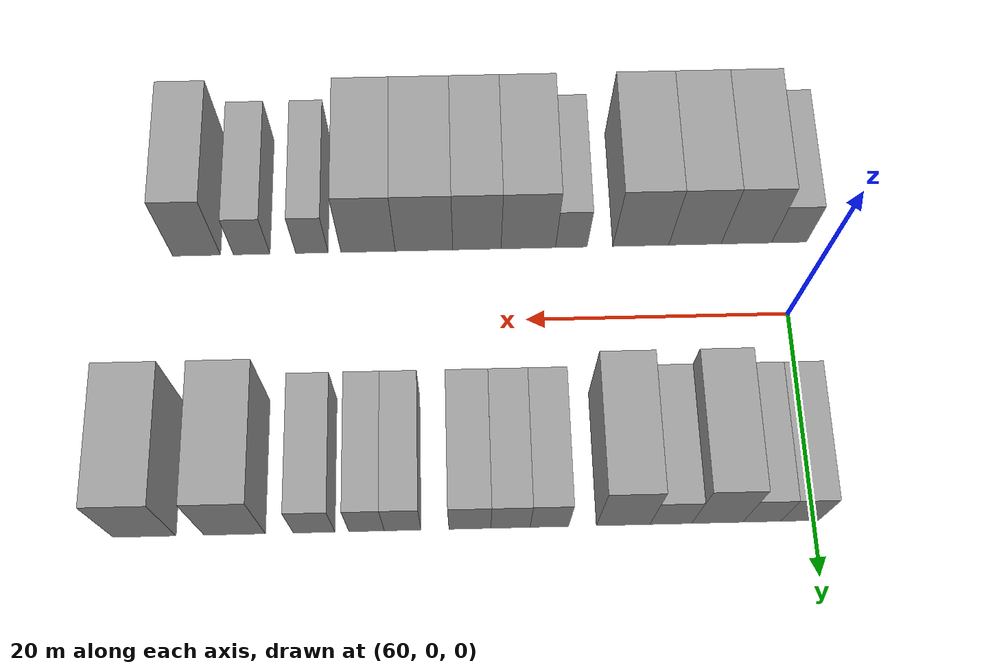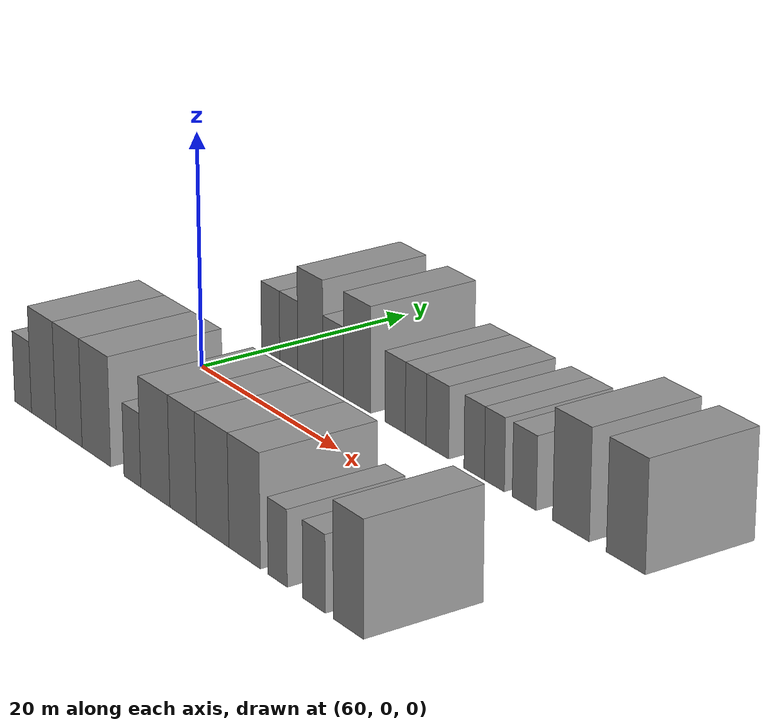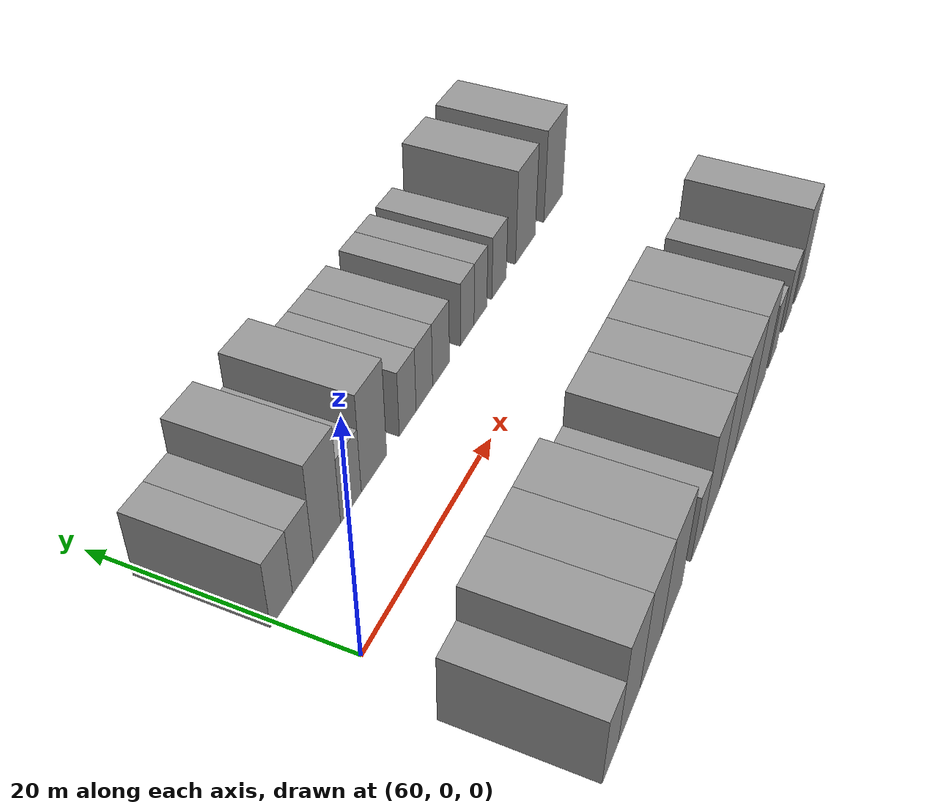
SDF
<sdf version="1.6">
 <world name="default">
  <model name="building_14">
   <static>1</static>
   <pose>60.9623 11.0000 0 0.000000 0.000000 1.570796</pose>
   <link name="link">
    <pose>0 0 3.00 0 0 0</pose>
    <collision name="collision"><geometry><box><size>10.0000 2.7682 6.0000</size></box></geometry></collision>
    <visual name="visual">
     <cast_shadows>0</cast_shadows>
     <geometry><box><size>10.0000 2.7682 6.0000</size></box></geometry>
     <material>
      <script>
       <uri>model://grey_wall/materials/scripts</uri>
       <uri>model://grey_wall/materials/textures</uri>
       <name>vrc/grey_wall</name>
      </script>
     </material>
    </visual>
   </link>
  </model>
  <model name="building_15">
   <static>1</static>
   <pose>63.6974 11.0000 0 0.000000 0.000000 1.570796</pose>
   <link name="link">
    <pose>0 0 3.00 0 0 0</pose>
    <collision name="collision"><geometry><box><size>10.0000 2.7020 6.0000</size></box></geometry></collision>
    <visual name="visual">
     <cast_shadows>0</cast_shadows>
     <geometry><box><size>10.0000 2.7020 6.0000</size></box></geometry>
     <material>
      <script>
       <uri>model://grey_wall/materials/scripts</uri>
       <uri>model://grey_wall/materials/textures</uri>
       <name>vrc/grey_wall</name>
      </script>
     </material>
    </visual>
   </link>
  </model>
  <model name="building_16">
   <static>1</static>
   <pose>66.8935 11.0000 0 0.000000 0.000000 1.570796</pose>
   <link name="link">
    <pose>0 0 4.50 0 0 0</pose>
    <collision name="collision"><geometry><box><size>10.0000 3.6904 9.0000</size></box></geometry></collision>
    <visual name="visual">
     <cast_shadows>0</cast_shadows>
     <geometry><box><size>10.0000 3.6904 9.0000</size></box></geometry>
     <material>
      <script>
       <uri>model://grey_wall/materials/scripts</uri>
       <uri>model://grey_wall/materials/textures</uri>
       <name>vrc/grey_wall</name>
      </script>
     </material>
    </visual>
   </link>
  </model>
  <model name="building_17">
   <static>1</static>
   <pose>70.2351 11.0000 0 0.000000 0.000000 1.570796</pose>
   <link name="link">
    <pose>0 0 3.00 0 0 0</pose>
    <collision name="collision"><geometry><box><size>10.0000 2.9928 6.0000</size></box></geometry></collision>
    <visual name="visual">
     <cast_shadows>0</cast_shadows>
     <geometry><box><size>10.0000 2.9928 6.0000</size></box></geometry>
     <material>
      <script>
       <uri>model://grey_wall/materials/scripts</uri>
       <uri>model://grey_wall/materials/textures</uri>
       <name>vrc/grey_wall</name>
      </script>
     </material>
    </visual>
   </link>
  </model>
  <model name="building_18">
   <static>1</static>
   <pose>73.6525 11.0000 0 0.000000 0.000000 1.570796</pose>
   <link name="link">
    <pose>0 0 4.50 0 0 0</pose>
    <collision name="collision"><geometry><box><size>10.0000 3.8420 9.0000</size></box></geometry></collision>
    <visual name="visual">
     <cast_shadows>0</cast_shadows>
     <geometry><box><size>10.0000 3.8420 9.0000</size></box></geometry>
     <material>
      <script>
       <uri>model://grey_wall/materials/scripts</uri>
       <uri>model://grey_wall/materials/textures</uri>
       <name>vrc/grey_wall</name>
      </script>
     </material>
    </visual>
   </link>
  </model>
  <model name="building_19">
   <static>1</static>
   <pose>78.9546 11.0000 0 0.000000 0.000000 1.570796</pose>
   <link name="link">
    <pose>0 0 3.00 0 0 0</pose>
    <collision name="collision"><geometry><box><size>10.0000 2.7621 6.0000</size></box></geometry></collision>
    <visual name="visual">
     <cast_shadows>0</cast_shadows>
     <geometry><box><size>10.0000 2.7621 6.0000</size></box></geometry>
     <material>
      <script>
       <uri>model://grey_wall/materials/scripts</uri>
       <uri>model://grey_wall/materials/textures</uri>
       <name>vrc/grey_wall</name>
      </script>
     </material>
    </visual>
   </link>
  </model>
  <model name="building_20">
   <static>1</static>
   <pose>81.7388 11.0000 0 0.000000 0.000000 1.570796</pose>
   <link name="link">
    <pose>0 0 3.00 0 0 0</pose>
    <collision name="collision"><geometry><box><size>10.0000 2.8063 6.0000</size></box></geometry></collision>
    <visual name="visual">
     <cast_shadows>0</cast_shadows>
     <geometry><box><size>10.0000 2.8063 6.0000</size></box></geometry>
     <material>
      <script>
       <uri>model://grey_wall/materials/scripts</uri>
       <uri>model://grey_wall/materials/textures</uri>
       <name>vrc/grey_wall</name>
      </script>
     </material>
    </visual>
   </link>
  </model>
  <model name="building_21">
   <static>1</static>
   <pose>84.6400 11.0000 0 0.000000 0.000000 1.570796</pose>
   <link name="link">
    <pose>0 0 3.00 0 0 0</pose>
    <collision name="collision"><geometry><box><size>10.0000 2.9960 6.0000</size></box></geometry></collision>
    <visual name="visual">
     <cast_shadows>0</cast_shadows>
     <geometry><box><size>10.0000 2.9960 6.0000</size></box></geometry>
     <material>
      <script>
       <uri>model://grey_wall/materials/scripts</uri>
       <uri>model://grey_wall/materials/textures</uri>
       <name>vrc/grey_wall</name>
      </script>
     </material>
    </visual>
   </link>
  </model>
  <model name="building_22">
   <static>1</static>
   <pose>89.4517 11.0000 0 0.000000 0.000000 1.570796</pose>
   <link name="link">
    <pose>0 0 3.00 0 0 0</pose>
    <collision name="collision"><geometry><box><size>10.0000 2.6273 6.0000</size></box></geometry></collision>
    <visual name="visual">
     <cast_shadows>0</cast_shadows>
     <geometry><box><size>10.0000 2.6273 6.0000</size></box></geometry>
     <material>
      <script>
       <uri>model://grey_wall/materials/scripts</uri>
       <uri>model://grey_wall/materials/textures</uri>
       <name>vrc/grey_wall</name>
      </script>
     </material>
    </visual>
   </link>
  </model>
  <model name="building_23">
   <static>1</static>
   <pose>92.0279 11.0000 0 0.000000 0.000000 1.570796</pose>
   <link name="link">
    <pose>0 0 3.00 0 0 0</pose>
    <collision name="collision"><geometry><box><size>10.0000 2.5250 6.0000</size></box></geometry></collision>
    <visual name="visual">
     <cast_shadows>0</cast_shadows>
     <geometry><box><size>10.0000 2.5250 6.0000</size></box></geometry>
     <material>
      <script>
       <uri>model://grey_wall/materials/scripts</uri>
       <uri>model://grey_wall/materials/textures</uri>
       <name>vrc/grey_wall</name>
      </script>
     </material>
    </visual>
   </link>
  </model>
  <model name="building_24">
   <static>1</static>
   <pose>95.7770 11.0000 0 0.000000 0.000000 1.570796</pose>
   <link name="link">
    <pose>0 0 3.00 0 0 0</pose>
    <collision name="collision"><geometry><box><size>10.0000 2.9732 6.0000</size></box></geometry></collision>
    <visual name="visual">
     <cast_shadows>0</cast_shadows>
     <geometry><box><size>10.0000 2.9732 6.0000</size></box></geometry>
     <material>
      <script>
       <uri>model://grey_wall/materials/scripts</uri>
       <uri>model://grey_wall/materials/textures</uri>
       <name>vrc/grey_wall</name>
      </script>
     </material>
    </visual>
   </link>
  </model>
  <model name="building_25">
   <static>1</static>
   <pose>101.4536 11.0000 0 0.000000 0.000000 1.570796</pose>
   <link name="link">
    <pose>0 0 4.50 0 0 0</pose>
    <collision name="collision"><geometry><box><size>10.0000 4.3800 9.0000</size></box></geometry></collision>
    <visual name="visual">
     <cast_shadows>0</cast_shadows>
     <geometry><box><size>10.0000 4.3800 9.0000</size></box></geometry>
     <material>
      <script>
       <uri>model://grey_wall/materials/scripts</uri>
       <uri>model://grey_wall/materials/textures</uri>
       <name>vrc/grey_wall</name>
      </script>
     </material>
    </visual>
   </link>
  </model>
  <model name="building_26">
   <static>1</static>
   <pose>107.8832 11.0000 0 0.000000 0.000000 1.570796</pose>
   <link name="link">
    <pose>0 0 4.50 0 0 0</pose>
    <collision name="collision"><geometry><box><size>10.0000 4.4793 9.0000</size></box></geometry></collision>
    <visual name="visual">
     <cast_shadows>0</cast_shadows>
     <geometry><box><size>10.0000 4.4793 9.0000</size></box></geometry>
     <material>
      <script>
       <uri>model://grey_wall/materials/scripts</uri>
       <uri>model://grey_wall/materials/textures</uri>
       <name>vrc/grey_wall</name>
      </script>
     </material>
    </visual>
   </link>
  </model>
  <model name="building_62">
   <static>1</static>
   <pose>59.2356 -11.0000 0 0.000000 0.000000 1.570796</pose>
   <link name="link">
    <pose>0 0 3.00 0 0 0</pose>
    <collision name="collision"><geometry><box><size>10.0000 2.7404 6.0000</size></box></geometry></collision>
    <visual name="visual">
     <cast_shadows>0</cast_shadows>
     <geometry><box><size>10.0000 2.7404 6.0000</size></box></geometry>
     <material>
      <script>
       <uri>model://grey_wall/materials/scripts</uri>
       <uri>model://grey_wall/materials/textures</uri>
       <name>vrc/grey_wall</name>
      </script>
     </material>
    </visual>
   </link>
  </model>
  <model name="building_63">
   <static>1</static>
   <pose>62.5726 -11.0000 0 0.000000 0.000000 1.570796</pose>
   <link name="link">
    <pose>0 0 4.50 0 0 0</pose>
    <collision name="collision"><geometry><box><size>10.0000 3.9336 9.0000</size></box></geometry></collision>
    <visual name="visual">
     <cast_shadows>0</cast_shadows>
     <geometry><box><size>10.0000 3.9336 9.0000</size></box></geometry>
     <material>
      <script>
       <uri>model://grey_wall/materials/scripts</uri>
       <uri>model://grey_wall/materials/textures</uri>
       <name>vrc/grey_wall</name>
      </script>
     </material>
    </visual>
   </link>
  </model>
  <model name="building_64">
   <static>1</static>
   <pose>66.5847 -11.0000 0 0.000000 0.000000 1.570796</pose>
   <link name="link">
    <pose>0 0 4.50 0 0 0</pose>
    <collision name="collision"><geometry><box><size>10.0000 4.0906 9.0000</size></box></geometry></collision>
    <visual name="visual">
     <cast_shadows>0</cast_shadows>
     <geometry><box><size>10.0000 4.0906 9.0000</size></box></geometry>
     <material>
      <script>
       <uri>model://grey_wall/materials/scripts</uri>
       <uri>model://grey_wall/materials/textures</uri>
       <name>vrc/grey_wall</name>
      </script>
     </material>
    </visual>
   </link>
  </model>
  <model name="building_65">
   <static>1</static>
   <pose>70.8140 -11.0000 0 0.000000 0.000000 1.570796</pose>
   <link name="link">
    <pose>0 0 4.50 0 0 0</pose>
    <collision name="collision"><geometry><box><size>10.0000 4.3679 9.0000</size></box></geometry></collision>
    <visual name="visual">
     <cast_shadows>0</cast_shadows>
     <geometry><box><size>10.0000 4.3679 9.0000</size></box></geometry>
     <material>
      <script>
       <uri>model://grey_wall/materials/scripts</uri>
       <uri>model://grey_wall/materials/textures</uri>
       <name>vrc/grey_wall</name>
      </script>
     </material>
    </visual>
   </link>
  </model>
  <model name="building_66">
   <static>1</static>
   <pose>76.2325 -11.0000 0 0.000000 0.000000 1.570796</pose>
   <link name="link">
    <pose>0 0 3.00 0 0 0</pose>
    <collision name="collision"><geometry><box><size>10.0000 2.4692 6.0000</size></box></geometry></collision>
    <visual name="visual">
     <cast_shadows>0</cast_shadows>
     <geometry><box><size>10.0000 2.4692 6.0000</size></box></geometry>
     <material>
      <script>
       <uri>model://grey_wall/materials/scripts</uri>
       <uri>model://grey_wall/materials/textures</uri>
       <name>vrc/grey_wall</name>
      </script>
     </material>
    </visual>
   </link>
  </model>
  <model name="building_67">
   <static>1</static>
   <pose>79.5894 -11.0000 0 0.000000 0.000000 1.570796</pose>
   <link name="link">
    <pose>0 0 4.50 0 0 0</pose>
    <collision name="collision"><geometry><box><size>10.0000 4.2446 9.0000</size></box></geometry></collision>
    <visual name="visual">
     <cast_shadows>0</cast_shadows>
     <geometry><box><size>10.0000 4.2446 9.0000</size></box></geometry>
     <material>
      <script>
       <uri>model://grey_wall/materials/scripts</uri>
       <uri>model://grey_wall/materials/textures</uri>
       <name>vrc/grey_wall</name>
      </script>
     </material>
    </visual>
   </link>
  </model>
  <model name="building_68">
   <static>1</static>
   <pose>83.5843 -11.0000 0 0.000000 0.000000 1.570796</pose>
   <link name="link">
    <pose>0 0 4.50 0 0 0</pose>
    <collision name="collision"><geometry><box><size>10.0000 3.7452 9.0000</size></box></geometry></collision>
    <visual name="visual">
     <cast_shadows>0</cast_shadows>
     <geometry><box><size>10.0000 3.7452 9.0000</size></box></geometry>
     <material>
      <script>
       <uri>model://grey_wall/materials/scripts</uri>
       <uri>model://grey_wall/materials/textures</uri>
       <name>vrc/grey_wall</name>
      </script>
     </material>
    </visual>
   </link>
  </model>
  <model name="building_69">
   <static>1</static>
   <pose>87.6979 -11.0000 0 0.000000 0.000000 1.570796</pose>
   <link name="link">
    <pose>0 0 4.50 0 0 0</pose>
    <collision name="collision"><geometry><box><size>10.0000 4.4820 9.0000</size></box></geometry></collision>
    <visual name="visual">
     <cast_shadows>0</cast_shadows>
     <geometry><box><size>10.0000 4.4820 9.0000</size></box></geometry>
     <material>
      <script>
       <uri>model://grey_wall/materials/scripts</uri>
       <uri>model://grey_wall/materials/textures</uri>
       <name>vrc/grey_wall</name>
      </script>
     </material>
    </visual>
   </link>
  </model>
  <model name="building_70">
   <static>1</static>
   <pose>92.0435 -11.0000 0 0.000000 0.000000 1.570796</pose>
   <link name="link">
    <pose>0 0 4.50 0 0 0</pose>
    <collision name="collision"><geometry><box><size>10.0000 4.2091 9.0000</size></box></geometry></collision>
    <visual name="visual">
     <cast_shadows>0</cast_shadows>
     <geometry><box><size>10.0000 4.2091 9.0000</size></box></geometry>
     <material>
      <script>
       <uri>model://grey_wall/materials/scripts</uri>
       <uri>model://grey_wall/materials/textures</uri>
       <name>vrc/grey_wall</name>
      </script>
     </material>
    </visual>
   </link>
  </model>
  <model name="building_71">
   <static>1</static>
   <pose>96.4030 -11.0000 0 0.000000 0.000000 1.570796</pose>
   <link name="link">
    <pose>0 0 3.00 0 0 0</pose>
    <collision name="collision"><geometry><box><size>10.0000 2.5099 6.0000</size></box></geometry></collision>
    <visual name="visual">
     <cast_shadows>0</cast_shadows>
     <geometry><box><size>10.0000 2.5099 6.0000</size></box></geometry>
     <material>
      <script>
       <uri>model://grey_wall/materials/scripts</uri>
       <uri>model://grey_wall/materials/textures</uri>
       <name>vrc/grey_wall</name>
      </script>
     </material>
    </visual>
   </link>
  </model>
  <model name="building_72">
   <static>1</static>
   <pose>101.0778 -11.0000 0 0.000000 0.000000 1.570796</pose>
   <link name="link">
    <pose>0 0 3.00 0 0 0</pose>
    <collision name="collision"><geometry><box><size>10.0000 2.8397 6.0000</size></box></geometry></collision>
    <visual name="visual">
     <cast_shadows>0</cast_shadows>
     <geometry><box><size>10.0000 2.8397 6.0000</size></box></geometry>
     <material>
      <script>
       <uri>model://grey_wall/materials/scripts</uri>
       <uri>model://grey_wall/materials/textures</uri>
       <name>vrc/grey_wall</name>
      </script>
     </material>
    </visual>
   </link>
  </model>
  <model name="building_73">
   <static>1</static>
   <pose>105.3498 -11.0000 0 0.000000 0.000000 1.570796</pose>
   <link name="link">
    <pose>0 0 4.50 0 0 0</pose>
    <collision name="collision"><geometry><box><size>10.0000 3.7044 9.0000</size></box></geometry></collision>
    <visual name="visual">
     <cast_shadows>0</cast_shadows>
     <geometry><box><size>10.0000 3.7044 9.0000</size></box></geometry>
     <material>
      <script>
       <uri>model://grey_wall/materials/scripts</uri>
       <uri>model://grey_wall/materials/textures</uri>
       <name>vrc/grey_wall</name>
      </script>
     </material>
    </visual>
   </link>
  </model>
 </world>
</sdf>
